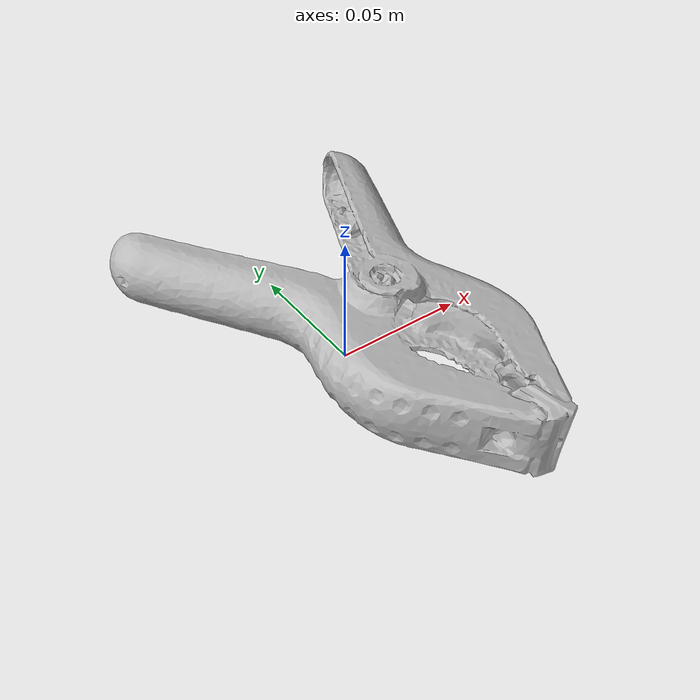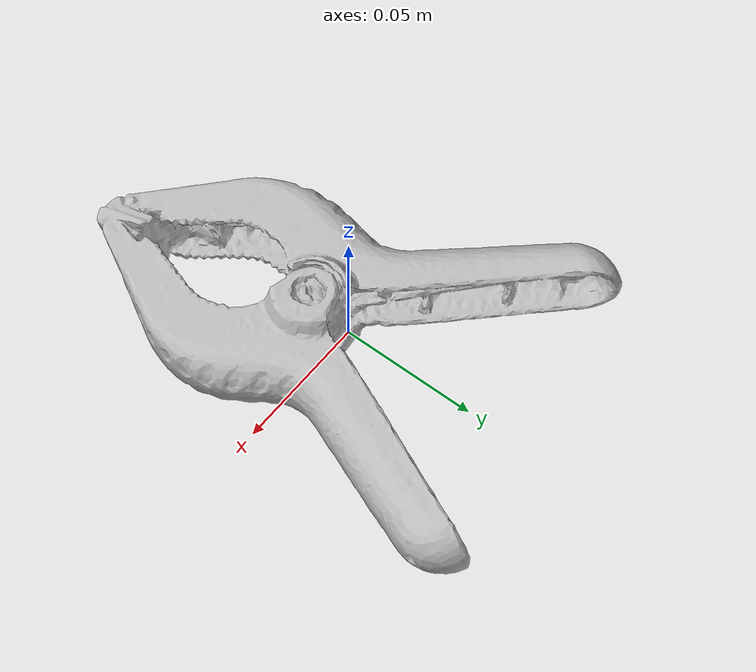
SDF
<?xml version="1.0" ?>
<sdf version='1.8'>
  <model name='ycb_051_large_clamp'>
    <link name='body'>
      <inertial>
        <mass>0.125</mass>
        <pose>0.0123056938 -0.0134098046 0.0173799003 0 0 0</pose>
        <inertia>
          <ixx>0.000196836705801</ixx>
          <ixy>1.54079174375e-05</ixy>
          <ixz>9.7835454761e-06</ixz>
          <iyy>0.000110601342472</iyy>
          <iyz>-9.79101263328e-06</iyz>
          <izz>0.00028844939885</izz>
        </inertia>
      </inertial>
      <visual name='ycb_051_large_clamp_visual'>
        <pose>0.014691 0.008162 -5.7e-05 0 0 0</pose>
        <geometry>
          <mesh>
            <uri>model://ycb_051_large_clamp/meshes/textured.dae</uri>
          </mesh>
        </geometry>
      </visual>
      <collision name='ycb_051_large_clamp_collision'>
        <pose>0.014691 0.008162 -5.7e-05 0 0 0</pose>
        <geometry>
          <mesh>
            <uri>model://ycb_051_large_clamp/meshes/nontextured.stl</uri>
          </mesh>
        </geometry>
        <max_contacts>10</max_contacts>
        <surface>
          <contact>
            <ode>
              <kp>1e15</kp>
              <kd>1e13</kd>
            </ode>
          </contact>
        </surface>
      </collision>
    </link>
  </model>
</sdf>
